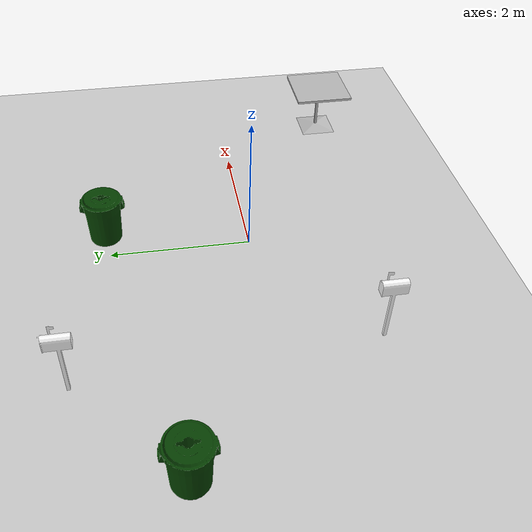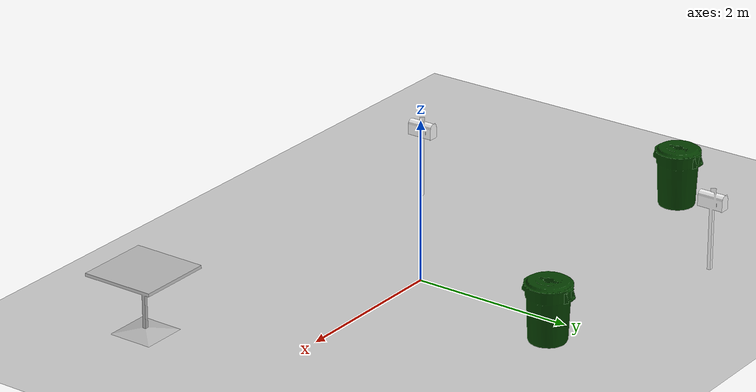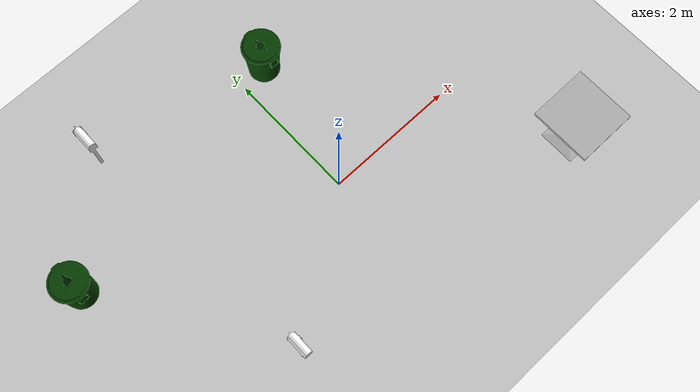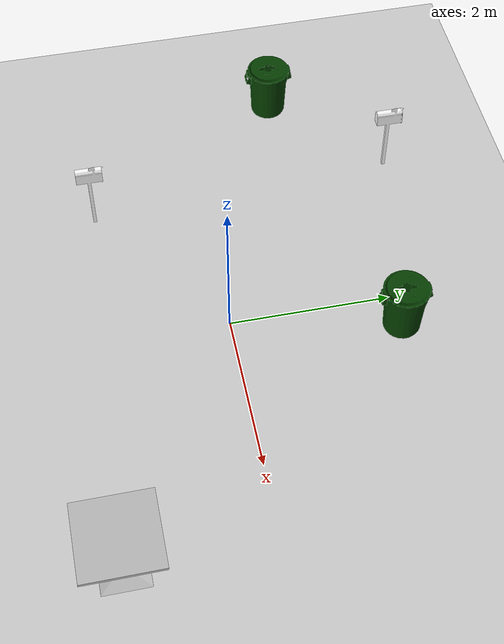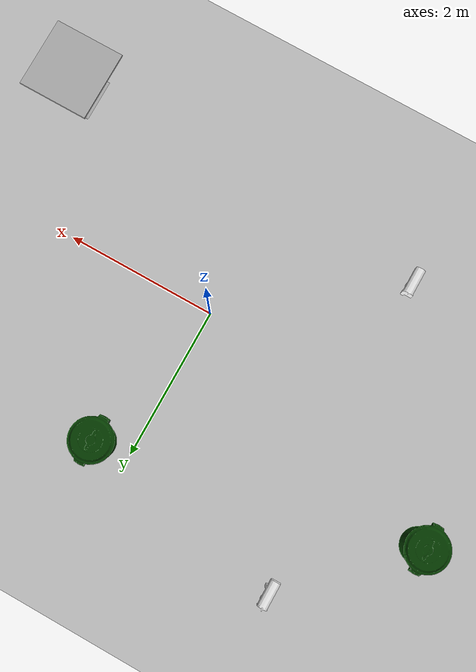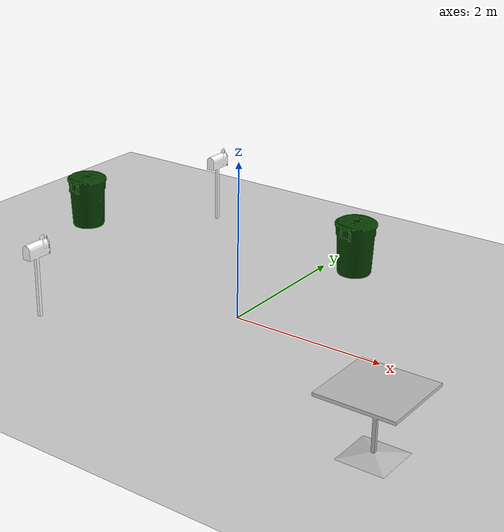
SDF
<sdf version="1.7">
 <world name="default">
  <light name="sun" type="directional">
   <pose>0 0 10 0 -0 0</pose>
   <diffuse>0.8 0.8 0.8 1</diffuse>
   <specular>0.2 0.2 0.2 1</specular>
   <attenuation>
    <range>1000</range>
    <constant>0.9</constant>
    <linear>0.01</linear>
    <quadratic>0.001</quadratic>
   </attenuation>
   <direction>-0.5 0.1 -0.9</direction>
   <spot><inner_angle>0</inner_angle><outer_angle>0</outer_angle><falloff>0</falloff></spot>
  </light>
  <model name="ground_plane">
   <static>1</static>
   <link name="link">
    <collision name="collision">
     <geometry><plane><normal>0 0 1</normal><size>100 100</size></plane></geometry>
     <surface><friction><ode><mu>100</mu><mu2>50</mu2></ode></friction></surface>
    </collision>
    <visual name="visual">
     <cast_shadows>0</cast_shadows>
     <geometry><plane><normal>0 0 1</normal><size>100 100</size></plane></geometry>
     <material>
      <script><uri>file://media/materials/scripts/gazebo.material</uri><name>Gazebo/Grey</name></script>
     </material>
    </visual>
   </link>
  </model>
  <gravity>0 0 -9.8</gravity>
  <magnetic_field>6e-06 2.3e-05 -4.2e-05</magnetic_field>
  <atmosphere type="adiabatic"/>
  <physics type="ode">
   <max_step_size>0.001</max_step_size>
   <real_time_factor>1</real_time_factor>
   <real_time_update_rate>1000</real_time_update_rate>
  </physics>
  <scene><ambient>0.4 0.4 0.4 1</ambient><background>0.7 0.7 0.7 1</background><shadows>1</shadows></scene>
  <audio><device>default</device></audio>
  <spherical_coordinates>
   <surface_model>EARTH_WGS84</surface_model>
   <latitude_deg>0</latitude_deg>
   <longitude_deg>0</longitude_deg>
   <elevation>0</elevation>
   <heading_deg>0</heading_deg>
  </spherical_coordinates>
  <model name="first_2015_trash_can">
   <link name="link">
    <inertial>
     <pose>0 0 0.3683 0 -0 0</pose>
     <mass>4.83076</mass>
     <inertia>
      <ixx>0.281534</ixx>
      <ixy>0</ixy>
      <ixz>0</ixz>
      <iyy>0.281534</iyy>
      <iyz>0</iyz>
      <izz>0.126223</izz>
     </inertia>
    </inertial>
    <visual name="visual">
     <geometry><mesh><uri>model://first_2015_trash_can/meshes/trash_can.dae</uri></mesh></geometry>
    </visual>
    <collision name="collision">
     <geometry><mesh><uri>model://first_2015_trash_can/meshes/trash_can.dae</uri></mesh></geometry>
    </collision>
   </link>
   <pose>-3.58666 1.23842 -3e-06 -1e-05 1.5e-05 -0.000293</pose>
  </model>
  <model name="first_2015_trash_can_0">
   <link name="link">
    <inertial>
     <pose>0 0 0.3683 0 -0 0</pose>
     <mass>4.83076</mass>
     <inertia>
      <ixx>0.281534</ixx>
      <ixy>0</ixy>
      <ixz>0</ixz>
      <iyy>0.281534</iyy>
      <iyz>0</iyz>
      <izz>0.126223</izz>
     </inertia>
    </inertial>
    <visual name="visual">
     <geometry><mesh><uri>model://first_2015_trash_can/meshes/trash_can.dae</uri></mesh></geometry>
    </visual>
    <collision name="collision">
     <geometry><mesh><uri>model://first_2015_trash_can/meshes/trash_can.dae</uri></mesh></geometry>
    </collision>
   </link>
   <pose>0.426146 2.05209 -4e-06 -1e-06 6e-06 -0.000218</pose>
  </model>
  <model name="Mailbox">
   <link name="link">
    <collision name="collision">
     <geometry><mesh><uri>model://mailbox/meshes/mailbox.dae</uri></mesh></geometry>
    </collision>
    <visual name="visual">
     <geometry><mesh><uri>model://mailbox/meshes/mailbox.dae</uri></mesh></geometry>
     <material>
      <script>
       <uri>model://mailbox/materials/scripts</uri>
       <uri>model://mailbox/materials/textures</uri>
       <name>Mailbox/Diffuse</name>
      </script>
     </material>
    </visual>
    <inertial>
     <inertia><ixx>1</ixx><ixy>0</ixy><ixz>0</ixz><iyy>1</iyy><iyz>0</iyz><izz>1</izz></inertia>
     <mass>1</mass>
    </inertial>
   </link>
   <pose>-1.97439 -1.40924 -9e-06 -4e-06 -1e-06 0</pose>
  </model>
  <model name="cafe_table">
   <static>1</static>
   <link name="link">
    <collision name="surface">
     <pose>0 0 0.755 0 -0 0</pose>
     <geometry><box><size>0.913 0.913 0.04</size></box></geometry>
    </collision>
    <collision name="column">
     <pose>0 0 0.37 0 -0 0</pose>
     <geometry><box><size>0.042 0.042 0.74</size></box></geometry>
    </collision>
    <collision name="base">
     <pose>0 0 0.02 0 -0 0</pose>
     <geometry><box><size>0.56 0.56 0.04</size></box></geometry>
    </collision>
    <visual name="visual">
     <geometry><mesh><uri>model://cafe_table/meshes/cafe_table.dae</uri></mesh></geometry>
    </visual>
   </link>
   <pose>2.90175 -1.71209 0 0 -0 0</pose>
  </model>
  <model name="Mailbox_0">
   <link name="link">
    <collision name="collision">
     <geometry><mesh><uri>model://mailbox/meshes/mailbox.dae</uri></mesh></geometry>
    </collision>
    <visual name="visual">
     <geometry><mesh><uri>model://mailbox/meshes/mailbox.dae</uri></mesh></geometry>
     <material>
      <script>
       <uri>model://mailbox/materials/scripts</uri>
       <uri>model://mailbox/materials/textures</uri>
       <name>Mailbox/Diffuse</name>
      </script>
     </material>
    </visual>
    <inertial>
     <inertia><ixx>1</ixx><ixy>0</ixy><ixz>0</ixz><iyy>1</iyy><iyz>0</iyz><izz>1</izz></inertia>
     <mass>1</mass>
    </inertial>
   </link>
   <pose>-2.22231 2.54388 -1e-05 5e-06 -7e-06 0</pose>
  </model>
 </world>
</sdf>
